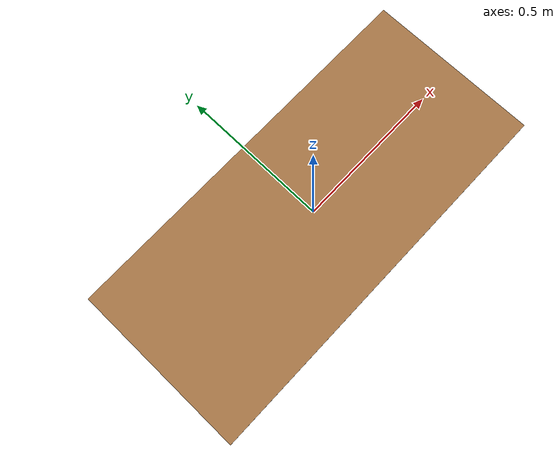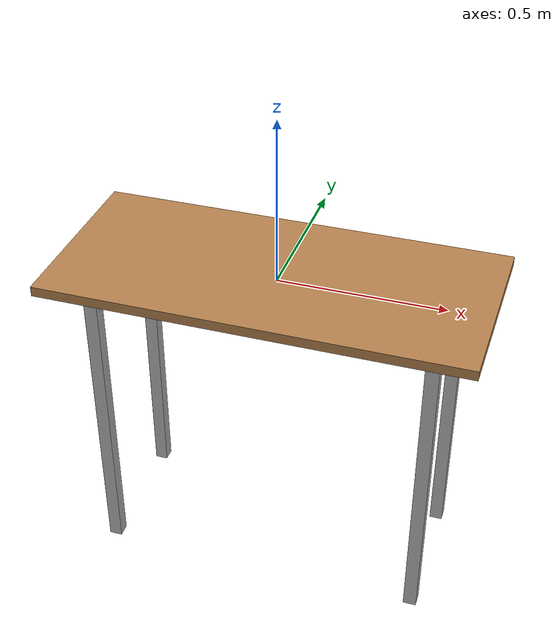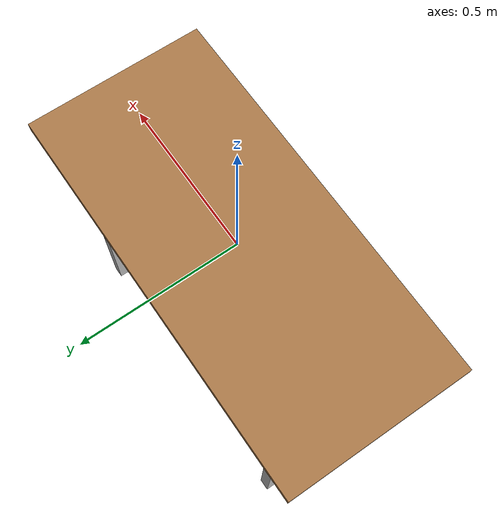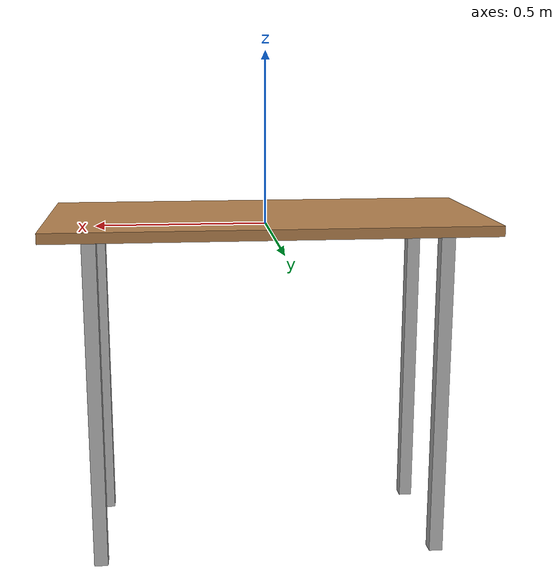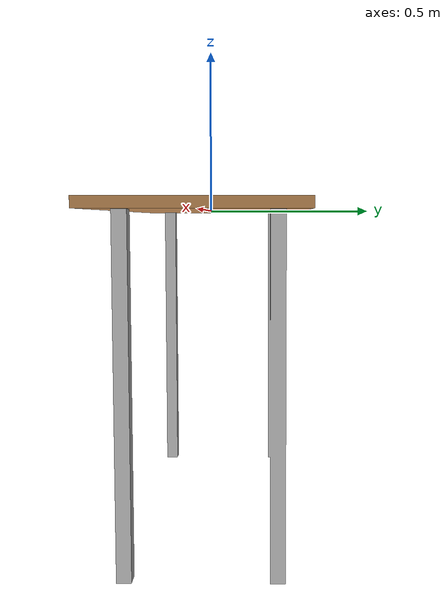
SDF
<?xml version='1.0'?>
<sdf version='1.6'>
  <model name='ur_desk'>
    <link name='base_link'>
      <pose frame=''>0 0 0 0 -0 0</pose>
      <inertial>
        <pose frame=''>0.001101 0.001101 -0.095103 0 -0 0</pose>
        <mass>28.1917</mass>
        <inertia>
          <ixx>2.30951</ixx>
          <ixy>-0.000121024</ixy>
          <ixz>0.0121024</ixz>
          <iyy>4.65439</iyy>
          <iyz>0.0121024</iyz>
          <izz>3.56661</izz>
        </inertia>
      </inertial>
      <gravity>1</gravity>
      <velocity_decay/>
      <self_collide>0</self_collide>
      <enable_wind>0</enable_wind>
      <kinematic>0</kinematic>
      <visual name='base_link_visual'>
        <pose frame=''>0 0 0 0 -0 0</pose>
        <geometry>
          <mesh>
            <scale>1 1 1</scale>
            <uri>model://ur_desk/meshes/base_link.STL</uri>
          </mesh>
        </geometry>
        <material>
          <script>
            <name>Gazebo/Wood</name>
            <uri>file://media/materials/scripts/gazebo.material</uri>
          </script>
          <shader type='pixel'/>
        </material>
        <transparency>0</transparency>
        <cast_shadows>1</cast_shadows>
      </visual>
      <visual name='base_link_fixed_joint_lump__link1_visual_1'>
        <pose frame=''>0 0 0 0 -0 0</pose>
        <geometry>
          <mesh>
            <scale>1 1 1</scale>
            <uri>model://ur_desk/meshes/link1.STL</uri>
          </mesh>
        </geometry>
        <material>
          <shader type='pixel'/>
        </material>
        <transparency>0</transparency>
        <cast_shadows>1</cast_shadows>
      </visual>
      <collision name='base_link_collision'>
        <laser_retro>0</laser_retro>
        <max_contacts>10</max_contacts>
        <pose frame=''>0 0 0 0 -0 0</pose>
        <geometry>
          <mesh>
            <uri>model://ur_desk/meshes/base_link.STL</uri>
            <scale>1 1 1</scale>
          </mesh>
        </geometry>
        <surface>
          <friction>
            <ode>
              <mu>1</mu>
              <mu2>1</mu2>
              <fdir1>0 0 0</fdir1>
              <slip1>0</slip1>
              <slip2>0</slip2>
            </ode>
            <torsional>
              <coefficient>1</coefficient>
              <patch_radius>0</patch_radius>
              <surface_radius>0</surface_radius>
              <use_patch_radius>1</use_patch_radius>
              <ode>
                <slip>0</slip>
              </ode>
            </torsional>
          </friction>
          <bounce>
            <restitution_coefficient>0</restitution_coefficient>
            <threshold>1e+06</threshold>
          </bounce>
          <contact>
            <collide_without_contact>0</collide_without_contact>
            <collide_without_contact_bitmask>1</collide_without_contact_bitmask>
            <collide_bitmask>1</collide_bitmask>
            <ode>
              <soft_cfm>0</soft_cfm>
              <soft_erp>0.2</soft_erp>
              <kp>1e+13</kp>
              <kd>1</kd>
              <max_vel>0.01</max_vel>
              <min_depth>0</min_depth>
            </ode>
            <bullet>
              <split_impulse>1</split_impulse>
              <split_impulse_penetration_threshold>-0.01</split_impulse_penetration_threshold>
              <soft_cfm>0</soft_cfm>
              <soft_erp>0.2</soft_erp>
              <kp>1e+13</kp>
              <kd>1</kd>
            </bullet>
          </contact>
        </surface>
      </collision>
      <collision name='base_link_fixed_joint_lump__link1_collision_1'>
        <laser_retro>0</laser_retro>
        <max_contacts>10</max_contacts>
        <pose frame=''>0 0 0 0 -0 0</pose>
        <geometry>
          <mesh>
            <uri>model://ur_desk/meshes/link1.STL</uri>
            <scale>1 1 1</scale>
          </mesh>
        </geometry>
        <surface>
          <friction>
            <ode>
              <mu>1</mu>
              <mu2>1</mu2>
              <fdir1>0 0 0</fdir1>
              <slip1>0</slip1>
              <slip2>0</slip2>
            </ode>
            <torsional>
              <coefficient>1</coefficient>
              <patch_radius>0</patch_radius>
              <surface_radius>0</surface_radius>
              <use_patch_radius>1</use_patch_radius>
              <ode>
                <slip>0</slip>
              </ode>
            </torsional>
          </friction>
          <bounce>
            <restitution_coefficient>0</restitution_coefficient>
            <threshold>1e+06</threshold>
          </bounce>
          <contact>
            <collide_without_contact>0</collide_without_contact>
            <collide_without_contact_bitmask>1</collide_without_contact_bitmask>
            <collide_bitmask>1</collide_bitmask>
            <ode>
              <soft_cfm>0</soft_cfm>
              <soft_erp>0.2</soft_erp>
              <kp>1e+13</kp>
              <kd>1</kd>
              <max_vel>0.01</max_vel>
              <min_depth>0</min_depth>
            </ode>
            <bullet>
              <split_impulse>1</split_impulse>
              <split_impulse_penetration_threshold>-0.01</split_impulse_penetration_threshold>
              <soft_cfm>0</soft_cfm>
              <soft_erp>0.2</soft_erp>
              <kp>1e+13</kp>
              <kd>1</kd>
            </bullet>
          </contact>
        </surface>
      </collision>
    </link>
    <static>1</static>
    <allow_auto_disable>1</allow_auto_disable>
  </model>
</sdf>
